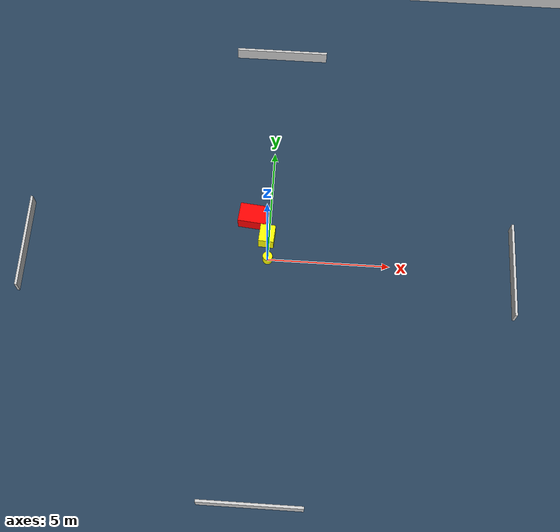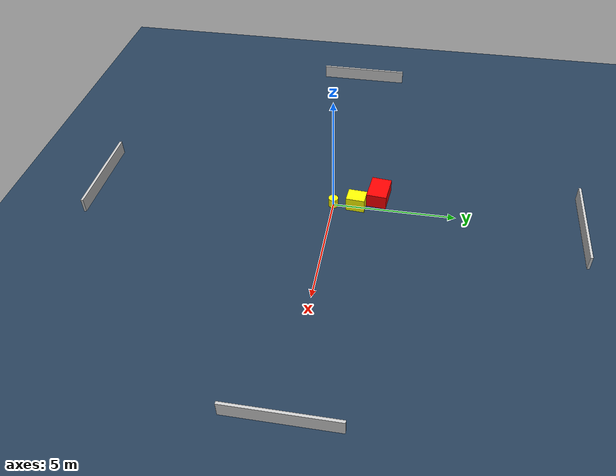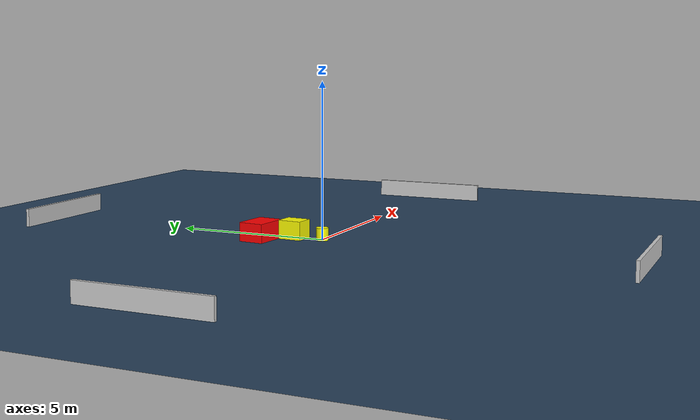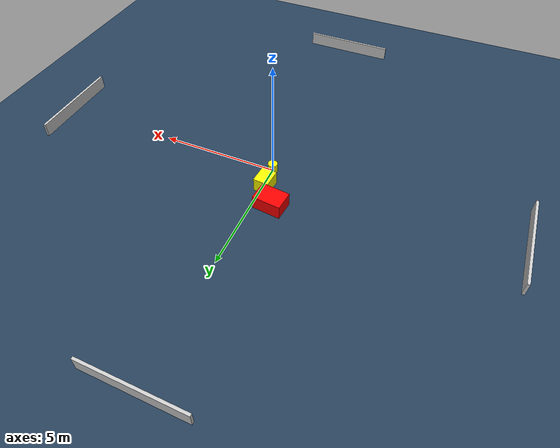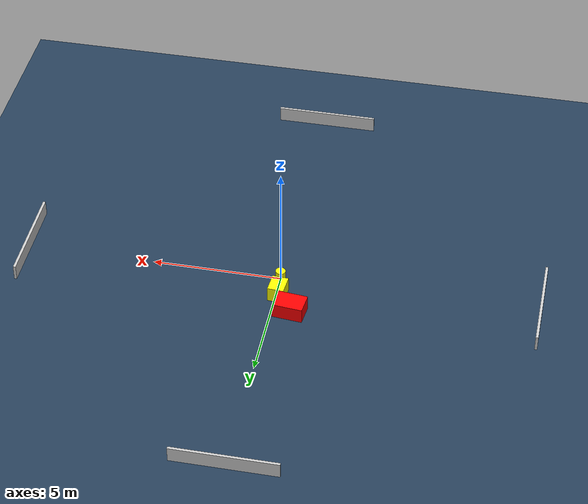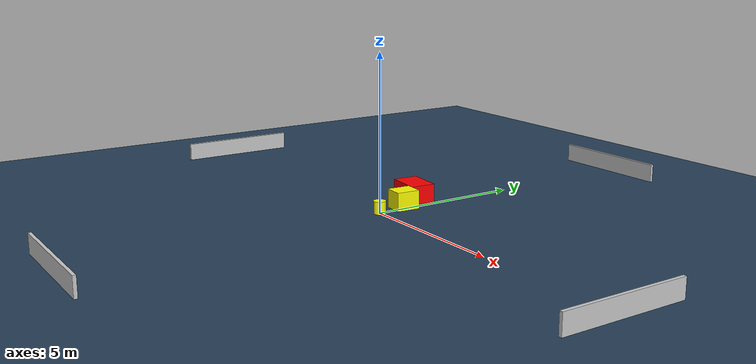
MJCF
<?xml version="1.0" ?>
<mujoco model="generated_environment">
  <option timestep="0.01" integrator="RK4" cone="elliptic"/>
  <default>
    <geom density="1"/>
  </default>
  <asset>
    <texture builtin="gradient" height="3072" name="skybox" rgb1="0.3 0.5 0.7" rgb2="0 0 0" type="skybox" width="512"/>
    <texture builtin="checker" height="300" name="groundplane" rgb1="0.2 0.3 0.4" rgb2="0.1 0.2 0.3" type="2d" width="300"/>
    <material name="groundplane" reflectance="0.2" texrepeat="5 5" texture="groundplane"/>
  </asset>
  <worldbody>
    <light dir="0 0 -1" directional="true" pos="0 0 1.5"/>
    <geom condim="3" friction="0.5 0.005 0.001" material="groundplane" name="floor" pos="0 0 0" size="0 0 0.05" type="plane"/>
    <body name="walls">
      <geom name="wall_1" condim="4" pos="-10.0 0.0 0.3" rgba="0.800000011920929 0.800000011920929 0.800000011920929 1.0" size="0.05 2.0 0.3" type="box"/>
      <geom name="wall_2" condim="4" pos="10.0 0.0 0.3" rgba="0.800000011920929 0.800000011920929 0.800000011920929 1.0" size="0.05 2.0 0.3" type="box"/>
      <geom name="wall_3" condim="4" pos="0.0 -10.0 0.3" rgba="0.800000011920929 0.800000011920929 0.800000011920929 1.0" size="2.0 0.05 0.3" type="box"/>
      <geom name="wall_4" condim="4" pos="0.0 10.0 0.3" rgba="0.800000011920929 0.800000011920929 0.800000011920929 1.0" size="2.0 0.05 0.3" type="box"/>
    </body>
    <body name="robot">
      <joint name="joint_x" type="slide" pos="0 0 0" axis="1 0 0"/>
      <joint name="joint_y" type="slide" pos="0 0 0" axis="0 1 0"/>
      <geom name="robot" type="cylinder" pos="0.0 0.0 0.2" size="0.2 0.2 0.0" mass="5.0" friction="1.0 0.005 0.0001" condim="4" rgba="1.0 1.0 0.0 1.0"/>
    </body>
    <body name="obstacle_1_movable">
      <geom name="obstacle_1_movable" condim="4" pos="-0.0839478071966429 0.9459705319191278 0.3" euler="0 0 175.9778551683499" friction="0.0 0.005 0.001" rgba="1.0 1.0 0.0 1.0" size="0.3130386226728319 0.3821232609176026 0.3" type="box" mass="0.1"/>
      <joint type="free"/>
    </body>
    <body name="obstacle_2_static">
      <geom name="obstacle_2_static" condim="4" pos="-0.7144167918289116 1.8055927307451243 0.3" euler="0 0 174.32698634888936" friction="0.0 0.005 0.001" rgba="1.0 0.0 0.0 1.0" size="0.5824328141492876 0.40993558088764515 0.3" type="box"/>
    </body>
  </worldbody>
  <actuator>
    <motor name="actuator_x" joint="joint_x" gear="1" ctrlrange="-1 1"/>
    <motor name="actuator_y" joint="joint_y" gear="1" ctrlrange="-1 1"/>
  </actuator>
</mujoco>
